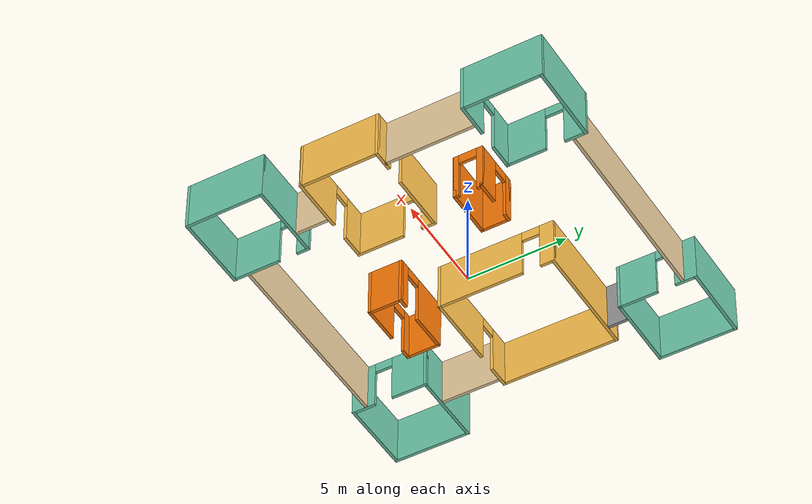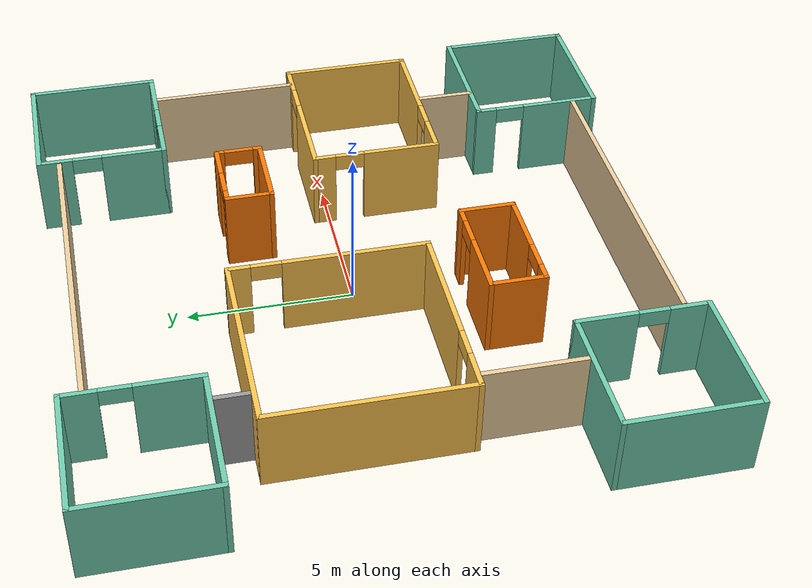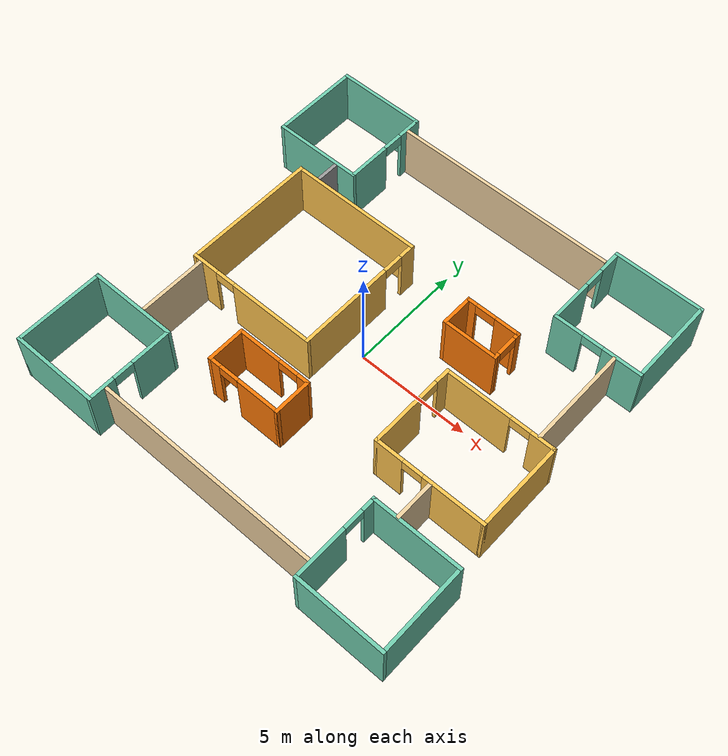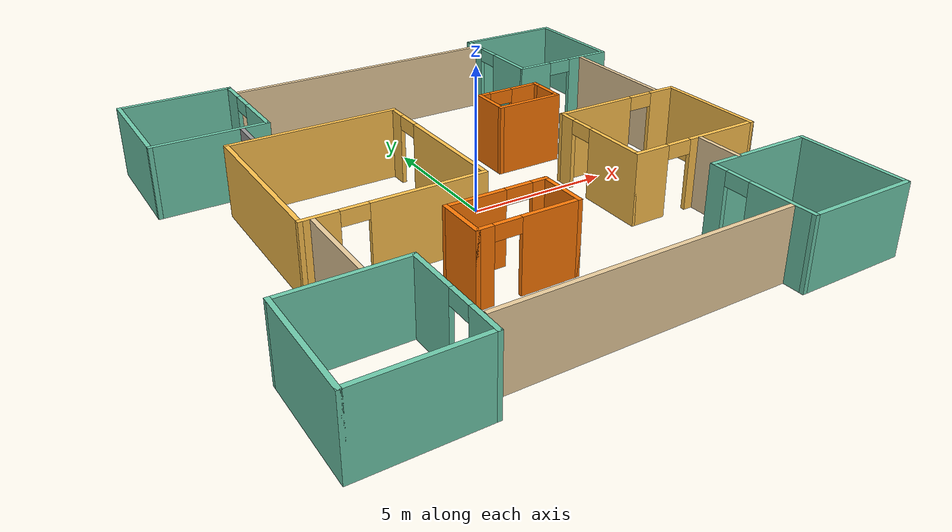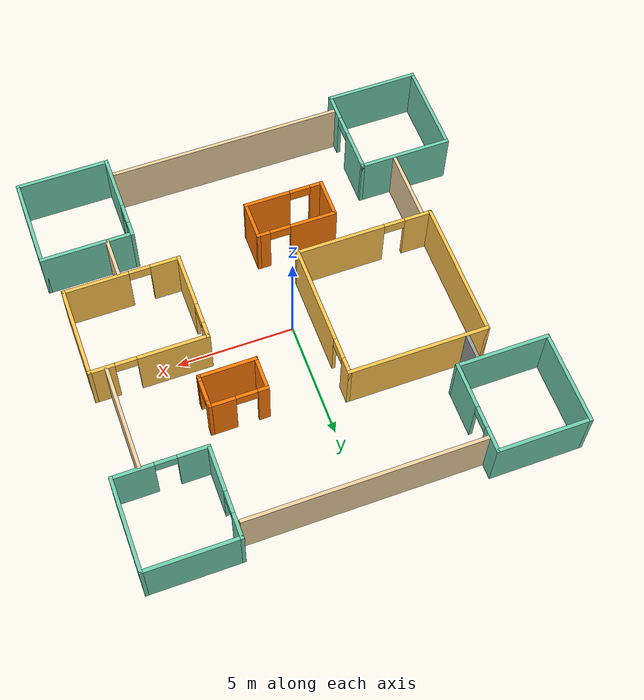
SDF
<?xml version='1.0'?>
<sdf version='1.6'>
  <model name='building'>
    <pose frame=''>0.06696 -0.111318 0 0 -0 0</pose>
    <link name='Wall_100'>
      <collision name='Wall_100_Collision'>
        <geometry>
          <box>
            <size>2.5 0.15 2.5</size>
          </box>
        </geometry>
        <pose frame=''>0 0 1.25 0 -0 0</pose>
      </collision>
      <visual name='Wall_100_Visual'>
        <pose frame=''>0 0 1.25 0 -0 0</pose>
        <geometry>
          <box>
            <size>2.5 0.15 2.5</size>
          </box>
        </geometry>
        <material>
          <script>
            <uri>file://media/materials/scripts/gazebo.material</uri>
            <name>Gazebo/Grey</name>
          </script>
          <ambient>0.996078 0.47451 0.0196078 1</ambient>
        </material>
        <meta>
          <layer>0</layer>
        </meta>
      </visual>
      <pose frame=''>3.37853 2.13615 0 0 -0 3.14159</pose>
    </link>
    <link name='Wall_101'>
      <collision name='Wall_101_Collision'>
        <geometry>
          <box>
            <size>1.5 0.15 2.5</size>
          </box>
        </geometry>
        <pose frame=''>0 0 1.25 0 -0 0</pose>
      </collision>
      <visual name='Wall_101_Visual'>
        <pose frame=''>0 0 1.25 0 -0 0</pose>
        <geometry>
          <box>
            <size>1.5 0.15 2.5</size>
          </box>
        </geometry>
        <material>
          <script>
            <uri>file://media/materials/scripts/gazebo.material</uri>
            <name>Gazebo/Grey</name>
          </script>
          <ambient>0.996078 0.47451 0.0196078 1</ambient>
        </material>
        <meta>
          <layer>0</layer>
        </meta>
      </visual>
      <pose frame=''>2.20353 2.81115 0 0 -0 1.5708</pose>
    </link>
    <link name='Wall_103'>
      <collision name='Wall_103_Collision'>
        <geometry>
          <box>
            <size>1.75 0.15 2.5</size>
          </box>
        </geometry>
        <pose frame=''>0 0 1.25 0 -0 0</pose>
      </collision>
      <visual name='Wall_103_Visual'>
        <pose frame=''>0 0 1.25 0 -0 0</pose>
        <geometry>
          <box>
            <size>1.75 0.15 2.5</size>
          </box>
        </geometry>
        <material>
          <script>
            <uri>file://media/materials/scripts/gazebo.material</uri>
            <name>Gazebo/Grey</name>
          </script>
          <ambient>0.996078 0.47451 0.0196078 1</ambient>
        </material>
        <meta>
          <layer>0</layer>
        </meta>
      </visual>
      <pose frame=''>-3.11094 -4.01873 0 0 0 -1.5708</pose>
    </link>
    <link name='Wall_104'>
      <pose frame=''>-1.43594 -4.81873 0 0 -0 0</pose>
      <visual name='Wall_104_Visual_0'>
        <pose frame=''>-1.45465 0 1.25 0 -0 0</pose>
        <geometry>
          <box>
            <size>0.590693 0.15 2.5</size>
          </box>
        </geometry>
        <material>
          <script>
            <uri>file://media/materials/scripts/gazebo.material</uri>
            <name>Gazebo/Grey</name>
          </script>
          <ambient>0.996078 0.47451 0.0196078 1</ambient>
        </material>
        <meta>
          <layer>0</layer>
        </meta>
      </visual>
      <collision name='Wall_104_Collision_0'>
        <geometry>
          <box>
            <size>0.590693 0.15 2.5</size>
          </box>
        </geometry>
        <pose frame=''>-1.45465 0 1.25 0 -0 0</pose>
      </collision>
      <visual name='Wall_104_Visual_1'>
        <pose frame=''>0.745346 0 1.25 0 -0 0</pose>
        <geometry>
          <box>
            <size>2.00931 0.15 2.5</size>
          </box>
        </geometry>
        <material>
          <script>
            <uri>file://media/materials/scripts/gazebo.material</uri>
            <name>Gazebo/Grey</name>
          </script>
          <ambient>0.996078 0.47451 0.0196078 1</ambient>
        </material>
        <meta>
          <layer>0</layer>
        </meta>
      </visual>
      <collision name='Wall_104_Collision_1'>
        <geometry>
          <box>
            <size>2.00931 0.15 2.5</size>
          </box>
        </geometry>
        <pose frame=''>0.745346 0 1.25 0 -0 0</pose>
      </collision>
      <visual name='Wall_104_Visual_2'>
        <pose frame=''>-0.709307 0 2.25 0 -0 0</pose>
        <geometry>
          <box>
            <size>0.9 0.15 0.5</size>
          </box>
        </geometry>
        <material>
          <script>
            <uri>file://media/materials/scripts/gazebo.material</uri>
            <name>Gazebo/Grey</name>
          </script>
          <ambient>0.996078 0.47451 0.0196078 1</ambient>
        </material>
        <meta>
          <layer>0</layer>
        </meta>
      </visual>
      <collision name='Wall_104_Collision_2'>
        <geometry>
          <box>
            <size>0.9 0.15 0.5</size>
          </box>
        </geometry>
        <pose frame=''>-0.709307 0 2.25 0 -0 0</pose>
      </collision>
    </link>
    <link name='Wall_105'>
      <collision name='Wall_105_Collision'>
        <geometry>
          <box>
            <size>1.75 0.15 2.5</size>
          </box>
        </geometry>
        <pose frame=''>0 0 1.25 0 -0 0</pose>
      </collision>
      <visual name='Wall_105_Visual'>
        <pose frame=''>0 0 1.25 0 -0 0</pose>
        <geometry>
          <box>
            <size>1.75 0.15 2.5</size>
          </box>
        </geometry>
        <material>
          <script>
            <uri>file://media/materials/scripts/gazebo.material</uri>
            <name>Gazebo/Grey</name>
          </script>
          <ambient>0.996078 0.47451 0.0196078 1</ambient>
        </material>
        <meta>
          <layer>0</layer>
        </meta>
      </visual>
      <pose frame=''>0.239057 -4.01873 0 0 -0 1.5708</pose>
    </link>
    <link name='Wall_106'>
      <pose frame=''>-1.43594 -3.21873 0 0 -0 3.14159</pose>
      <visual name='Wall_106_Visual_0'>
        <pose frame=''>-1.46139 0 1.25 0 -0 0</pose>
        <geometry>
          <box>
            <size>0.577222 0.15 2.5</size>
          </box>
        </geometry>
        <material>
          <script>
            <uri>file://media/materials/scripts/gazebo.material</uri>
            <name>Gazebo/Grey</name>
          </script>
          <ambient>0.996078 0.47451 0.0196078 1</ambient>
        </material>
        <meta>
          <layer>0</layer>
        </meta>
      </visual>
      <collision name='Wall_106_Collision_0'>
        <geometry>
          <box>
            <size>0.577222 0.15 2.5</size>
          </box>
        </geometry>
        <pose frame=''>-1.46139 0 1.25 0 -0 0</pose>
      </collision>
      <visual name='Wall_106_Visual_1'>
        <pose frame=''>0.738611 0 1.25 0 -0 0</pose>
        <geometry>
          <box>
            <size>2.02278 0.15 2.5</size>
          </box>
        </geometry>
        <material>
          <script>
            <uri>file://media/materials/scripts/gazebo.material</uri>
            <name>Gazebo/Grey</name>
          </script>
          <ambient>0.996078 0.47451 0.0196078 1</ambient>
        </material>
        <meta>
          <layer>0</layer>
        </meta>
      </visual>
      <collision name='Wall_106_Collision_1'>
        <geometry>
          <box>
            <size>2.02278 0.15 2.5</size>
          </box>
        </geometry>
        <pose frame=''>0.738611 0 1.25 0 -0 0</pose>
      </collision>
      <visual name='Wall_106_Visual_2'>
        <pose frame=''>-0.722778 0 2.25 0 -0 0</pose>
        <geometry>
          <box>
            <size>0.9 0.15 0.5</size>
          </box>
        </geometry>
        <material>
          <script>
            <uri>file://media/materials/scripts/gazebo.material</uri>
            <name>Gazebo/Grey</name>
          </script>
          <ambient>0.996078 0.47451 0.0196078 1</ambient>
        </material>
        <meta>
          <layer>0</layer>
        </meta>
      </visual>
      <collision name='Wall_106_Collision_2'>
        <geometry>
          <box>
            <size>0.9 0.15 0.5</size>
          </box>
        </geometry>
        <pose frame=''>-0.722778 0 2.25 0 -0 0</pose>
      </collision>
    </link>
    <link name='Wall_108'>
      <collision name='Wall_108_Collision'>
        <geometry>
          <box>
            <size>3 0.15 2.5</size>
          </box>
        </geometry>
        <pose frame=''>0 0 1.25 0 -0 0</pose>
      </collision>
      <visual name='Wall_108_Visual'>
        <pose frame=''>0 0 1.25 0 -0 0</pose>
        <geometry>
          <box>
            <size>3 0.15 2.5</size>
          </box>
        </geometry>
        <material>
          <script>
            <uri>file://media/materials/scripts/gazebo.material</uri>
            <name>Gazebo/Grey</name>
          </script>
          <ambient>0.921569 0.807843 0.615686 1</ambient>
        </material>
        <meta>
          <layer>0</layer>
        </meta>
      </visual>
      <pose frame=''>-6.50973 -3.48506 0 0 0 -1.5708</pose>
    </link>
    <link name='Wall_114'>
      <collision name='Wall_114_Collision'>
        <geometry>
          <box>
            <size>4.5 0.15 2.5</size>
          </box>
        </geometry>
        <pose frame=''>0 0 1.25 0 -0 0</pose>
      </collision>
      <visual name='Wall_114_Visual'>
        <pose frame=''>0 0 1.25 0 -0 0</pose>
        <geometry>
          <box>
            <size>4.5 0.15 2.5</size>
          </box>
        </geometry>
        <material>
          <script>
            <uri>file://media/materials/scripts/gazebo.material</uri>
            <name>Gazebo/Grey</name>
          </script>
          <ambient>0.921569 0.807843 0.615686 1</ambient>
        </material>
        <meta>
          <layer>0</layer>
        </meta>
      </visual>
      <pose frame=''>7.81153 2.79707 0 0 0 -1.5708</pose>
    </link>
    <link name='Wall_116'>
      <collision name='Wall_116_Collision'>
        <geometry>
          <box>
            <size>10 0.15 2.5</size>
          </box>
        </geometry>
        <pose frame=''>0 0 1.25 0 -0 0</pose>
      </collision>
      <visual name='Wall_116_Visual'>
        <pose frame=''>0 0 1.25 0 -0 0</pose>
        <geometry>
          <box>
            <size>10 0.15 2.5</size>
          </box>
        </geometry>
        <material>
          <script>
            <uri>file://media/materials/scripts/gazebo.material</uri>
            <name>Gazebo/Grey</name>
          </script>
          <ambient>0.921569 0.807843 0.615686 1</ambient>
        </material>
        <meta>
          <layer>0</layer>
        </meta>
      </visual>
      <pose frame=''>0.006519 -8.20878 0 0 -0 0</pose>
    </link>
    <link name='Wall_118'>
      <collision name='Wall_118_Collision'>
        <geometry>
          <box>
            <size>1.75 0.15 2.5</size>
          </box>
        </geometry>
        <pose frame=''>0 0 1.25 0 -0 0</pose>
      </collision>
      <visual name='Wall_118_Visual'>
        <pose frame=''>0 0 1.25 0 -0 0</pose>
        <geometry>
          <box>
            <size>1.75 0.15 2.5</size>
          </box>
        </geometry>
        <material>
          <script>
            <uri>file://media/materials/scripts/gazebo.material</uri>
            <name>Gazebo/Grey</name>
          </script>
          <ambient>0.921569 0.807843 0.615686 1</ambient>
        </material>
        <meta>
          <layer>0</layer>
        </meta>
      </visual>
      <pose frame=''>6.15848 -4.23502 0 0 0 -1.5708</pose>
    </link>
    <link name='Wall_121'>
      <collision name='Wall_121_Collision'>
        <geometry>
          <box>
            <size>1 0.15 2.5</size>
          </box>
        </geometry>
        <pose frame=''>0 0 1.25 0 -0 0</pose>
      </collision>
      <visual name='Wall_121_Visual'>
        <pose frame=''>0 0 1.25 0 -0 0</pose>
        <geometry>
          <box>
            <size>1 0.15 2.5</size>
          </box>
        </geometry>
        <material>
          <script>
            <uri>file://media/materials/scripts/gazebo.material</uri>
            <name>Gazebo/Grey</name>
          </script>
          <ambient>1 1 1 1</ambient>
        </material>
        <meta>
          <layer>0</layer>
        </meta>
      </visual>
      <pose frame=''>-5.96902 4.51336 0 0 0 -1.5708</pose>
    </link>
    <link name='Wall_124'>
      <collision name='Wall_124_Collision'>
        <geometry>
          <box>
            <size>10 0.15 2.5</size>
          </box>
        </geometry>
        <pose frame=''>0 0 1.25 0 -0 0</pose>
      </collision>
      <visual name='Wall_124_Visual'>
        <pose frame=''>0 0 1.25 0 -0 0</pose>
        <geometry>
          <box>
            <size>10 0.15 2.5</size>
          </box>
        </geometry>
        <material>
          <script>
            <uri>file://media/materials/scripts/gazebo.material</uri>
            <name>Gazebo/Grey</name>
          </script>
          <ambient>0.921569 0.807843 0.615686 1</ambient>
        </material>
        <meta>
          <layer>0</layer>
        </meta>
      </visual>
      <pose frame=''>-0.024379 8.30625 0 0 -0 0</pose>
    </link>
    <link name='Wall_58'>
      <collision name='Wall_58_Collision'>
        <geometry>
          <box>
            <size>4 0.15 2.5</size>
          </box>
        </geometry>
        <pose frame=''>0 0 1.25 0 -0 0</pose>
      </collision>
      <visual name='Wall_58_Visual'>
        <pose frame=''>0 0 1.25 0 -0 0</pose>
        <geometry>
          <box>
            <size>4 0.15 2.5</size>
          </box>
        </geometry>
        <material>
          <script>
            <uri>file://media/materials/scripts/gazebo.material</uri>
            <name>Gazebo/Grey</name>
          </script>
          <ambient>0.435294 0.796078 0.67451 1</ambient>
        </material>
        <meta>
          <layer>0</layer>
        </meta>
      </visual>
      <pose frame=''>-7.00929 8.93364 0 0 -0 0</pose>
    </link>
    <link name='Wall_59'>
      <pose frame=''>-5.08429 7.00864 0 0 0 -1.5708</pose>
      <visual name='Wall_59_Visual_0'>
        <pose frame=''>-1.4441 0 1.25 0 -0 0</pose>
        <geometry>
          <box>
            <size>1.11179 0.15 2.5</size>
          </box>
        </geometry>
        <material>
          <script>
            <uri>file://media/materials/scripts/gazebo.material</uri>
            <name>Gazebo/Grey</name>
          </script>
          <ambient>0.435294 0.796078 0.67451 1</ambient>
        </material>
        <meta>
          <layer>0</layer>
        </meta>
      </visual>
      <collision name='Wall_59_Collision_0'>
        <geometry>
          <box>
            <size>1.11179 0.15 2.5</size>
          </box>
        </geometry>
        <pose frame=''>-1.4441 0 1.25 0 -0 0</pose>
      </collision>
      <visual name='Wall_59_Visual_1'>
        <pose frame=''>1.0059 0 1.25 0 -0 0</pose>
        <geometry>
          <box>
            <size>1.98821 0.15 2.5</size>
          </box>
        </geometry>
        <material>
          <script>
            <uri>file://media/materials/scripts/gazebo.material</uri>
            <name>Gazebo/Grey</name>
          </script>
          <ambient>0.435294 0.796078 0.67451 1</ambient>
        </material>
        <meta>
          <layer>0</layer>
        </meta>
      </visual>
      <collision name='Wall_59_Collision_1'>
        <geometry>
          <box>
            <size>1.98821 0.15 2.5</size>
          </box>
        </geometry>
        <pose frame=''>1.0059 0 1.25 0 -0 0</pose>
      </collision>
      <visual name='Wall_59_Visual_2'>
        <pose frame=''>-0.438207 0 2.25 0 -0 0</pose>
        <geometry>
          <box>
            <size>0.9 0.15 0.5</size>
          </box>
        </geometry>
        <material>
          <script>
            <uri>file://media/materials/scripts/gazebo.material</uri>
            <name>Gazebo/Grey</name>
          </script>
          <ambient>0.435294 0.796078 0.67451 1</ambient>
        </material>
        <meta>
          <layer>0</layer>
        </meta>
      </visual>
      <collision name='Wall_59_Collision_2'>
        <geometry>
          <box>
            <size>0.9 0.15 0.5</size>
          </box>
        </geometry>
        <pose frame=''>-0.438207 0 2.25 0 -0 0</pose>
      </collision>
    </link>
    <link name='Wall_60'>
      <collision name='Wall_60_Collision'>
        <geometry>
          <box>
            <size>4 0.15 2.5</size>
          </box>
        </geometry>
        <pose frame=''>0 0 1.25 0 -0 0</pose>
      </collision>
      <visual name='Wall_60_Visual'>
        <pose frame=''>0 0 1.25 0 -0 0</pose>
        <geometry>
          <box>
            <size>4 0.15 2.5</size>
          </box>
        </geometry>
        <material>
          <script>
            <uri>file://media/materials/scripts/gazebo.material</uri>
            <name>Gazebo/Grey</name>
          </script>
          <ambient>0.435294 0.796078 0.67451 1</ambient>
        </material>
        <meta>
          <layer>0</layer>
        </meta>
      </visual>
      <pose frame=''>-7.00929 5.08364 0 0 -0 3.14159</pose>
    </link>
    <link name='Wall_61'>
      <collision name='Wall_61_Collision'>
        <geometry>
          <box>
            <size>4 0.15 2.5</size>
          </box>
        </geometry>
        <pose frame=''>0 0 1.25 0 -0 0</pose>
      </collision>
      <visual name='Wall_61_Visual'>
        <pose frame=''>0 0 1.25 0 -0 0</pose>
        <geometry>
          <box>
            <size>4 0.15 2.5</size>
          </box>
        </geometry>
        <material>
          <script>
            <uri>file://media/materials/scripts/gazebo.material</uri>
            <name>Gazebo/Grey</name>
          </script>
          <ambient>0.435294 0.796078 0.67451 1</ambient>
        </material>
        <meta>
          <layer>0</layer>
        </meta>
      </visual>
      <pose frame=''>-8.93429 7.00864 0 0 -0 1.5708</pose>
    </link>
    <link name='Wall_63'>
      <collision name='Wall_63_Collision'>
        <geometry>
          <box>
            <size>4 0.15 2.5</size>
          </box>
        </geometry>
        <pose frame=''>0 0 1.25 0 -0 0</pose>
      </collision>
      <visual name='Wall_63_Visual'>
        <pose frame=''>0 0 1.25 0 -0 0</pose>
        <geometry>
          <box>
            <size>4 0.15 2.5</size>
          </box>
        </geometry>
        <material>
          <script>
            <uri>file://media/materials/scripts/gazebo.material</uri>
            <name>Gazebo/Grey</name>
          </script>
          <ambient>0.435294 0.796078 0.67451 1</ambient>
        </material>
        <meta>
          <layer>0</layer>
        </meta>
      </visual>
      <pose frame=''>8.93429 6.99136 0 0 0 -1.5708</pose>
    </link>
    <link name='Wall_64'>
      <pose frame=''>7.00929 5.06635 0 0 -0 3.14159</pose>
      <visual name='Wall_64_Visual_0'>
        <pose frame=''>-1.11962 0 1.25 0 -0 0</pose>
        <geometry>
          <box>
            <size>1.76077 0.15 2.5</size>
          </box>
        </geometry>
        <material>
          <script>
            <uri>file://media/materials/scripts/gazebo.material</uri>
            <name>Gazebo/Grey</name>
          </script>
          <ambient>0.435294 0.796078 0.67451 1</ambient>
        </material>
        <meta>
          <layer>0</layer>
        </meta>
      </visual>
      <collision name='Wall_64_Collision_0'>
        <geometry>
          <box>
            <size>1.76077 0.15 2.5</size>
          </box>
        </geometry>
        <pose frame=''>-1.11962 0 1.25 0 -0 0</pose>
      </collision>
      <visual name='Wall_64_Visual_1'>
        <pose frame=''>1.33038 0 1.25 0 -0 0</pose>
        <geometry>
          <box>
            <size>1.33923 0.15 2.5</size>
          </box>
        </geometry>
        <material>
          <script>
            <uri>file://media/materials/scripts/gazebo.material</uri>
            <name>Gazebo/Grey</name>
          </script>
          <ambient>0.435294 0.796078 0.67451 1</ambient>
        </material>
        <meta>
          <layer>0</layer>
        </meta>
      </visual>
      <collision name='Wall_64_Collision_1'>
        <geometry>
          <box>
            <size>1.33923 0.15 2.5</size>
          </box>
        </geometry>
        <pose frame=''>1.33038 0 1.25 0 -0 0</pose>
      </collision>
      <visual name='Wall_64_Visual_2'>
        <pose frame=''>0.210767 0 2.25 0 -0 0</pose>
        <geometry>
          <box>
            <size>0.9 0.15 0.5</size>
          </box>
        </geometry>
        <material>
          <script>
            <uri>file://media/materials/scripts/gazebo.material</uri>
            <name>Gazebo/Grey</name>
          </script>
          <ambient>0.435294 0.796078 0.67451 1</ambient>
        </material>
        <meta>
          <layer>0</layer>
        </meta>
      </visual>
      <collision name='Wall_64_Collision_2'>
        <geometry>
          <box>
            <size>0.9 0.15 0.5</size>
          </box>
        </geometry>
        <pose frame=''>0.210767 0 2.25 0 -0 0</pose>
      </collision>
    </link>
    <link name='Wall_65'>
      <pose frame=''>5.08429 6.99136 0 0 -0 1.5708</pose>
      <visual name='Wall_65_Visual_0'>
        <pose frame=''>-0.997252 0 1.25 0 -0 0</pose>
        <geometry>
          <box>
            <size>2.0055 0.15 2.5</size>
          </box>
        </geometry>
        <material>
          <script>
            <uri>file://media/materials/scripts/gazebo.material</uri>
            <name>Gazebo/Grey</name>
          </script>
          <ambient>0.435294 0.796078 0.67451 1</ambient>
        </material>
        <meta>
          <layer>0</layer>
        </meta>
      </visual>
      <collision name='Wall_65_Collision_0'>
        <geometry>
          <box>
            <size>2.0055 0.15 2.5</size>
          </box>
        </geometry>
        <pose frame=''>-0.997252 0 1.25 0 -0 0</pose>
      </collision>
      <visual name='Wall_65_Visual_1'>
        <pose frame=''>1.45275 0 1.25 0 -0 0</pose>
        <geometry>
          <box>
            <size>1.0945 0.15 2.5</size>
          </box>
        </geometry>
        <material>
          <script>
            <uri>file://media/materials/scripts/gazebo.material</uri>
            <name>Gazebo/Grey</name>
          </script>
          <ambient>0.435294 0.796078 0.67451 1</ambient>
        </material>
        <meta>
          <layer>0</layer>
        </meta>
      </visual>
      <collision name='Wall_65_Collision_1'>
        <geometry>
          <box>
            <size>1.0945 0.15 2.5</size>
          </box>
        </geometry>
        <pose frame=''>1.45275 0 1.25 0 -0 0</pose>
      </collision>
      <visual name='Wall_65_Visual_2'>
        <pose frame=''>0.455496 0 2.25 0 -0 0</pose>
        <geometry>
          <box>
            <size>0.9 0.15 0.5</size>
          </box>
        </geometry>
        <material>
          <script>
            <uri>file://media/materials/scripts/gazebo.material</uri>
            <name>Gazebo/Grey</name>
          </script>
          <ambient>0.435294 0.796078 0.67451 1</ambient>
        </material>
        <meta>
          <layer>0</layer>
        </meta>
      </visual>
      <collision name='Wall_65_Collision_2'>
        <geometry>
          <box>
            <size>0.9 0.15 0.5</size>
          </box>
        </geometry>
        <pose frame=''>0.455496 0 2.25 0 -0 0</pose>
      </collision>
    </link>
    <link name='Wall_66'>
      <collision name='Wall_66_Collision'>
        <geometry>
          <box>
            <size>4 0.15 2.5</size>
          </box>
        </geometry>
        <pose frame=''>0 0 1.25 0 -0 0</pose>
      </collision>
      <visual name='Wall_66_Visual'>
        <pose frame=''>0 0 1.25 0 -0 0</pose>
        <geometry>
          <box>
            <size>4 0.15 2.5</size>
          </box>
        </geometry>
        <material>
          <script>
            <uri>file://media/materials/scripts/gazebo.material</uri>
            <name>Gazebo/Grey</name>
          </script>
          <ambient>0.435294 0.796078 0.67451 1</ambient>
        </material>
        <meta>
          <layer>0</layer>
        </meta>
      </visual>
      <pose frame=''>7.00929 8.91635 0 0 -0 0</pose>
    </link>
    <link name='Wall_71'>
      <collision name='Wall_71_Collision'>
        <geometry>
          <box>
            <size>4 0.15 2.5</size>
          </box>
        </geometry>
        <pose frame=''>0 0 1.25 0 -0 0</pose>
      </collision>
      <visual name='Wall_71_Visual'>
        <pose frame=''>0 0 1.25 0 -0 0</pose>
        <geometry>
          <box>
            <size>4 0.15 2.5</size>
          </box>
        </geometry>
        <material>
          <script>
            <uri>file://media/materials/scripts/gazebo.material</uri>
            <name>Gazebo/Grey</name>
          </script>
          <ambient>0.435294 0.796078 0.67451 1</ambient>
        </material>
        <meta>
          <layer>0</layer>
        </meta>
      </visual>
      <pose frame=''>7.00929 -8.93364 0 0 -0 3.14159</pose>
    </link>
    <link name='Wall_72'>
      <pose frame=''>5.08429 -7.00864 0 0 -0 1.5708</pose>
      <visual name='Wall_72_Visual_0'>
        <pose frame=''>-0.779391 0 1.25 0 -0 0</pose>
        <geometry>
          <box>
            <size>2.44122 0.15 2.5</size>
          </box>
        </geometry>
        <material>
          <script>
            <uri>file://media/materials/scripts/gazebo.material</uri>
            <name>Gazebo/Grey</name>
          </script>
          <ambient>0.435294 0.796078 0.67451 1</ambient>
        </material>
        <meta>
          <layer>0</layer>
        </meta>
      </visual>
      <collision name='Wall_72_Collision_0'>
        <geometry>
          <box>
            <size>2.44122 0.15 2.5</size>
          </box>
        </geometry>
        <pose frame=''>-0.779391 0 1.25 0 -0 0</pose>
      </collision>
      <visual name='Wall_72_Visual_1'>
        <pose frame=''>1.67061 0 1.25 0 -0 0</pose>
        <geometry>
          <box>
            <size>0.658782 0.15 2.5</size>
          </box>
        </geometry>
        <material>
          <script>
            <uri>file://media/materials/scripts/gazebo.material</uri>
            <name>Gazebo/Grey</name>
          </script>
          <ambient>0.435294 0.796078 0.67451 1</ambient>
        </material>
        <meta>
          <layer>0</layer>
        </meta>
      </visual>
      <collision name='Wall_72_Collision_1'>
        <geometry>
          <box>
            <size>0.658782 0.15 2.5</size>
          </box>
        </geometry>
        <pose frame=''>1.67061 0 1.25 0 -0 0</pose>
      </collision>
      <visual name='Wall_72_Visual_2'>
        <pose frame=''>0.891218 0 2.25 0 -0 0</pose>
        <geometry>
          <box>
            <size>0.9 0.15 0.5</size>
          </box>
        </geometry>
        <material>
          <script>
            <uri>file://media/materials/scripts/gazebo.material</uri>
            <name>Gazebo/Grey</name>
          </script>
          <ambient>0.435294 0.796078 0.67451 1</ambient>
        </material>
        <meta>
          <layer>0</layer>
        </meta>
      </visual>
      <collision name='Wall_72_Collision_2'>
        <geometry>
          <box>
            <size>0.9 0.15 0.5</size>
          </box>
        </geometry>
        <pose frame=''>0.891218 0 2.25 0 -0 0</pose>
      </collision>
    </link>
    <link name='Wall_73'>
      <collision name='Wall_73_Collision'>
        <geometry>
          <box>
            <size>4 0.15 2.5</size>
          </box>
        </geometry>
        <pose frame=''>0 0 1.25 0 -0 0</pose>
      </collision>
      <visual name='Wall_73_Visual'>
        <pose frame=''>0 0 1.25 0 -0 0</pose>
        <geometry>
          <box>
            <size>4 0.15 2.5</size>
          </box>
        </geometry>
        <material>
          <script>
            <uri>file://media/materials/scripts/gazebo.material</uri>
            <name>Gazebo/Grey</name>
          </script>
          <ambient>0.435294 0.796078 0.67451 1</ambient>
        </material>
        <meta>
          <layer>0</layer>
        </meta>
      </visual>
      <pose frame=''>7.00929 -5.08364 0 0 -0 0</pose>
    </link>
    <link name='Wall_74'>
      <collision name='Wall_74_Collision'>
        <geometry>
          <box>
            <size>4 0.15 2.5</size>
          </box>
        </geometry>
        <pose frame=''>0 0 1.25 0 -0 0</pose>
      </collision>
      <visual name='Wall_74_Visual'>
        <pose frame=''>0 0 1.25 0 -0 0</pose>
        <geometry>
          <box>
            <size>4 0.15 2.5</size>
          </box>
        </geometry>
        <material>
          <script>
            <uri>file://media/materials/scripts/gazebo.material</uri>
            <name>Gazebo/Grey</name>
          </script>
          <ambient>0.435294 0.796078 0.67451 1</ambient>
        </material>
        <meta>
          <layer>0</layer>
        </meta>
      </visual>
      <pose frame=''>8.93429 -7.00864 0 0 0 -1.5708</pose>
    </link>
    <link name='Wall_76'>
      <collision name='Wall_76_Collision'>
        <geometry>
          <box>
            <size>4 0.15 2.5</size>
          </box>
        </geometry>
        <pose frame=''>0 0 1.25 0 -0 0</pose>
      </collision>
      <visual name='Wall_76_Visual'>
        <pose frame=''>0 0 1.25 0 -0 0</pose>
        <geometry>
          <box>
            <size>4 0.15 2.5</size>
          </box>
        </geometry>
        <material>
          <script>
            <uri>file://media/materials/scripts/gazebo.material</uri>
            <name>Gazebo/Grey</name>
          </script>
          <ambient>0.435294 0.796078 0.67451 1</ambient>
        </material>
        <meta>
          <layer>0</layer>
        </meta>
      </visual>
      <pose frame=''>-7.00929 -8.91636 0 0 -0 0</pose>
    </link>
    <link name='Wall_77'>
      <pose frame=''>-5.08429 -6.99136 0 0 -0 1.5708</pose>
      <visual name='Wall_77_Visual_0'>
        <pose frame=''>-1.38249 0 1.25 0 -0 0</pose>
        <geometry>
          <box>
            <size>1.23503 0.15 2.5</size>
          </box>
        </geometry>
        <material>
          <script>
            <uri>file://media/materials/scripts/gazebo.material</uri>
            <name>Gazebo/Grey</name>
          </script>
          <ambient>0.435294 0.796078 0.67451 1</ambient>
        </material>
        <meta>
          <layer>0</layer>
        </meta>
      </visual>
      <collision name='Wall_77_Collision_0'>
        <geometry>
          <box>
            <size>1.23503 0.15 2.5</size>
          </box>
        </geometry>
        <pose frame=''>-1.38249 0 1.25 0 -0 0</pose>
      </collision>
      <visual name='Wall_77_Visual_1'>
        <pose frame=''>1.06751 0 1.25 0 -0 0</pose>
        <geometry>
          <box>
            <size>1.86497 0.15 2.5</size>
          </box>
        </geometry>
        <material>
          <script>
            <uri>file://media/materials/scripts/gazebo.material</uri>
            <name>Gazebo/Grey</name>
          </script>
          <ambient>0.435294 0.796078 0.67451 1</ambient>
        </material>
        <meta>
          <layer>0</layer>
        </meta>
      </visual>
      <collision name='Wall_77_Collision_1'>
        <geometry>
          <box>
            <size>1.86497 0.15 2.5</size>
          </box>
        </geometry>
        <pose frame=''>1.06751 0 1.25 0 -0 0</pose>
      </collision>
      <visual name='Wall_77_Visual_2'>
        <pose frame=''>-0.314972 0 2.25 0 -0 0</pose>
        <geometry>
          <box>
            <size>0.9 0.15 0.5</size>
          </box>
        </geometry>
        <material>
          <script>
            <uri>file://media/materials/scripts/gazebo.material</uri>
            <name>Gazebo/Grey</name>
          </script>
          <ambient>0.435294 0.796078 0.67451 1</ambient>
        </material>
        <meta>
          <layer>0</layer>
        </meta>
      </visual>
      <collision name='Wall_77_Collision_2'>
        <geometry>
          <box>
            <size>0.9 0.15 0.5</size>
          </box>
        </geometry>
        <pose frame=''>-0.314972 0 2.25 0 -0 0</pose>
      </collision>
    </link>
    <link name='Wall_78'>
      <collision name='Wall_78_Collision'>
        <geometry>
          <box>
            <size>4 0.15 2.5</size>
          </box>
        </geometry>
        <pose frame=''>0 0 1.25 0 -0 0</pose>
      </collision>
      <visual name='Wall_78_Visual'>
        <pose frame=''>0 0 1.25 0 -0 0</pose>
        <geometry>
          <box>
            <size>4 0.15 2.5</size>
          </box>
        </geometry>
        <material>
          <script>
            <uri>file://media/materials/scripts/gazebo.material</uri>
            <name>Gazebo/Grey</name>
          </script>
          <ambient>0.435294 0.796078 0.67451 1</ambient>
        </material>
        <meta>
          <layer>0</layer>
        </meta>
      </visual>
      <pose frame=''>-7.00929 -5.06636 0 0 -0 3.14159</pose>
    </link>
    <link name='Wall_79'>
      <collision name='Wall_79_Collision'>
        <geometry>
          <box>
            <size>4 0.15 2.5</size>
          </box>
        </geometry>
        <pose frame=''>0 0 1.25 0 -0 0</pose>
      </collision>
      <visual name='Wall_79_Visual'>
        <pose frame=''>0 0 1.25 0 -0 0</pose>
        <geometry>
          <box>
            <size>4 0.15 2.5</size>
          </box>
        </geometry>
        <material>
          <script>
            <uri>file://media/materials/scripts/gazebo.material</uri>
            <name>Gazebo/Grey</name>
          </script>
          <ambient>0.435294 0.796078 0.67451 1</ambient>
        </material>
        <meta>
          <layer>0</layer>
        </meta>
      </visual>
      <pose frame=''>-8.93429 -6.99136 0 0 0 -1.5708</pose>
    </link>
    <link name='Wall_84'>
      <collision name='Wall_84_Collision'>
        <geometry>
          <box>
            <size>6 0.15 2.5</size>
          </box>
        </geometry>
        <pose frame=''>0 0 1.25 0 -0 0</pose>
      </collision>
      <visual name='Wall_84_Visual'>
        <pose frame=''>0 0 1.25 0 -0 0</pose>
        <geometry>
          <box>
            <size>6 0.15 2.5</size>
          </box>
        </geometry>
        <material>
          <script>
            <uri>file://media/materials/scripts/gazebo.material</uri>
            <name>Gazebo/Grey</name>
          </script>
          <ambient>1 0.764706 0.305882 1</ambient>
        </material>
        <meta>
          <layer>0</layer>
        </meta>
      </visual>
      <pose frame=''>-3.94006 3.93417 0 0 -0 0</pose>
    </link>
    <link name='Wall_85'>
      <pose frame=''>-1.01506 1.00917 0 0 0 -1.5708</pose>
      <visual name='Wall_85_Visual_0'>
        <pose frame=''>-2.63359 0 1.25 0 -0 0</pose>
        <geometry>
          <box>
            <size>0.732823 0.15 2.5</size>
          </box>
        </geometry>
        <material>
          <script>
            <uri>file://media/materials/scripts/gazebo.material</uri>
            <name>Gazebo/Grey</name>
          </script>
          <ambient>1 0.764706 0.305882 1</ambient>
        </material>
        <meta>
          <layer>0</layer>
        </meta>
      </visual>
      <collision name='Wall_85_Collision_0'>
        <geometry>
          <box>
            <size>0.732823 0.15 2.5</size>
          </box>
        </geometry>
        <pose frame=''>-2.63359 0 1.25 0 -0 0</pose>
      </collision>
      <visual name='Wall_85_Visual_1'>
        <pose frame=''>0.816412 0 1.25 0 -0 0</pose>
        <geometry>
          <box>
            <size>4.36718 0.15 2.5</size>
          </box>
        </geometry>
        <material>
          <script>
            <uri>file://media/materials/scripts/gazebo.material</uri>
            <name>Gazebo/Grey</name>
          </script>
          <ambient>1 0.764706 0.305882 1</ambient>
        </material>
        <meta>
          <layer>0</layer>
        </meta>
      </visual>
      <collision name='Wall_85_Collision_1'>
        <geometry>
          <box>
            <size>4.36718 0.15 2.5</size>
          </box>
        </geometry>
        <pose frame=''>0.816412 0 1.25 0 -0 0</pose>
      </collision>
      <visual name='Wall_85_Visual_2'>
        <pose frame=''>-1.81718 0 2.25 0 -0 0</pose>
        <geometry>
          <box>
            <size>0.9 0.15 0.5</size>
          </box>
        </geometry>
        <material>
          <script>
            <uri>file://media/materials/scripts/gazebo.material</uri>
            <name>Gazebo/Grey</name>
          </script>
          <ambient>1 0.764706 0.305882 1</ambient>
        </material>
        <meta>
          <layer>0</layer>
        </meta>
      </visual>
      <collision name='Wall_85_Collision_2'>
        <geometry>
          <box>
            <size>0.9 0.15 0.5</size>
          </box>
        </geometry>
        <pose frame=''>-1.81718 0 2.25 0 -0 0</pose>
      </collision>
    </link>
    <link name='Wall_86'>
      <pose frame=''>-3.94006 -1.91583 0 0 -0 3.14159</pose>
      <visual name='Wall_86_Visual_0'>
        <pose frame=''>-1.06873 0 1.25 0 -0 0</pose>
        <geometry>
          <box>
            <size>3.86254 0.15 2.5</size>
          </box>
        </geometry>
        <material>
          <script>
            <uri>file://media/materials/scripts/gazebo.material</uri>
            <name>Gazebo/Grey</name>
          </script>
          <ambient>1 0.764706 0.305882 1</ambient>
        </material>
        <meta>
          <layer>0</layer>
        </meta>
      </visual>
      <collision name='Wall_86_Collision_0'>
        <geometry>
          <box>
            <size>3.86254 0.15 2.5</size>
          </box>
        </geometry>
        <pose frame=''>-1.06873 0 1.25 0 -0 0</pose>
      </collision>
      <visual name='Wall_86_Visual_1'>
        <pose frame=''>2.38127 0 1.25 0 -0 0</pose>
        <geometry>
          <box>
            <size>1.23746 0.15 2.5</size>
          </box>
        </geometry>
        <material>
          <script>
            <uri>file://media/materials/scripts/gazebo.material</uri>
            <name>Gazebo/Grey</name>
          </script>
          <ambient>1 0.764706 0.305882 1</ambient>
        </material>
        <meta>
          <layer>0</layer>
        </meta>
      </visual>
      <collision name='Wall_86_Collision_1'>
        <geometry>
          <box>
            <size>1.23746 0.15 2.5</size>
          </box>
        </geometry>
        <pose frame=''>2.38127 0 1.25 0 -0 0</pose>
      </collision>
      <visual name='Wall_86_Visual_2'>
        <pose frame=''>1.31254 0 2.25 0 -0 0</pose>
        <geometry>
          <box>
            <size>0.9 0.15 0.5</size>
          </box>
        </geometry>
        <material>
          <script>
            <uri>file://media/materials/scripts/gazebo.material</uri>
            <name>Gazebo/Grey</name>
          </script>
          <ambient>1 0.764706 0.305882 1</ambient>
        </material>
        <meta>
          <layer>0</layer>
        </meta>
      </visual>
      <collision name='Wall_86_Collision_2'>
        <geometry>
          <box>
            <size>0.9 0.15 0.5</size>
          </box>
        </geometry>
        <pose frame=''>1.31254 0 2.25 0 -0 0</pose>
      </collision>
    </link>
    <link name='Wall_87'>
      <collision name='Wall_87_Collision'>
        <geometry>
          <box>
            <size>6 0.15 2.5</size>
          </box>
        </geometry>
        <pose frame=''>0 0 1.25 0 -0 0</pose>
      </collision>
      <visual name='Wall_87_Visual'>
        <pose frame=''>0 0 1.25 0 -0 0</pose>
        <geometry>
          <box>
            <size>6 0.15 2.5</size>
          </box>
        </geometry>
        <material>
          <script>
            <uri>file://media/materials/scripts/gazebo.material</uri>
            <name>Gazebo/Grey</name>
          </script>
          <ambient>1 0.764706 0.305882 1</ambient>
        </material>
        <meta>
          <layer>0</layer>
        </meta>
      </visual>
      <pose frame=''>-6.86506 1.00917 0 0 -0 1.5708</pose>
    </link>
    <link name='Wall_89'>
      <collision name='Wall_89_Collision'>
        <geometry>
          <box>
            <size>4 0.15 2.5</size>
          </box>
        </geometry>
        <pose frame=''>0 0 1.25 0 -0 0</pose>
      </collision>
      <visual name='Wall_89_Visual'>
        <pose frame=''>0 0 1.25 0 -0 0</pose>
        <geometry>
          <box>
            <size>4 0.15 2.5</size>
          </box>
        </geometry>
        <material>
          <script>
            <uri>file://media/materials/scripts/gazebo.material</uri>
            <name>Gazebo/Grey</name>
          </script>
          <ambient>1 0.764706 0.305882 1</ambient>
        </material>
        <meta>
          <layer>0</layer>
        </meta>
      </visual>
      <pose frame=''>8.49129 -1.38643 0 0 -0 1.5708</pose>
    </link>
    <link name='Wall_90'>
      <pose frame=''>6.06629 0.538572 0 0 -0 3.14159</pose>
      <visual name='Wall_90_Visual_0'>
        <pose frame=''>-1.9492 0 1.25 0 -0 0</pose>
        <geometry>
          <box>
            <size>1.1016 0.15 2.5</size>
          </box>
        </geometry>
        <material>
          <script>
            <uri>file://media/materials/scripts/gazebo.material</uri>
            <name>Gazebo/Grey</name>
          </script>
          <ambient>1 0.764706 0.305882 1</ambient>
        </material>
        <meta>
          <layer>0</layer>
        </meta>
      </visual>
      <collision name='Wall_90_Collision_0'>
        <geometry>
          <box>
            <size>1.1016 0.15 2.5</size>
          </box>
        </geometry>
        <pose frame=''>-1.9492 0 1.25 0 -0 0</pose>
      </collision>
      <visual name='Wall_90_Visual_1'>
        <pose frame=''>1.0008 0 1.25 0 -0 0</pose>
        <geometry>
          <box>
            <size>2.9984 0.15 2.5</size>
          </box>
        </geometry>
        <material>
          <script>
            <uri>file://media/materials/scripts/gazebo.material</uri>
            <name>Gazebo/Grey</name>
          </script>
          <ambient>1 0.764706 0.305882 1</ambient>
        </material>
        <meta>
          <layer>0</layer>
        </meta>
      </visual>
      <collision name='Wall_90_Collision_1'>
        <geometry>
          <box>
            <size>2.9984 0.15 2.5</size>
          </box>
        </geometry>
        <pose frame=''>1.0008 0 1.25 0 -0 0</pose>
      </collision>
      <visual name='Wall_90_Visual_2'>
        <pose frame=''>-0.948401 0 2.25 0 -0 0</pose>
        <geometry>
          <box>
            <size>0.9 0.15 0.5</size>
          </box>
        </geometry>
        <material>
          <script>
            <uri>file://media/materials/scripts/gazebo.material</uri>
            <name>Gazebo/Grey</name>
          </script>
          <ambient>1 0.764706 0.305882 1</ambient>
        </material>
        <meta>
          <layer>0</layer>
        </meta>
      </visual>
      <collision name='Wall_90_Collision_2'>
        <geometry>
          <box>
            <size>0.9 0.15 0.5</size>
          </box>
        </geometry>
        <pose frame=''>-0.948401 0 2.25 0 -0 0</pose>
      </collision>
    </link>
    <link name='Wall_91'>
      <pose frame=''>3.64129 -1.38643 0 0 0 -1.5708</pose>
      <visual name='Wall_91_Visual_0'>
        <pose frame=''>-1.64261 0 1.25 0 -0 0</pose>
        <geometry>
          <box>
            <size>0.714781 0.15 2.5</size>
          </box>
        </geometry>
        <material>
          <script>
            <uri>file://media/materials/scripts/gazebo.material</uri>
            <name>Gazebo/Grey</name>
          </script>
          <ambient>1 0.764706 0.305882 1</ambient>
        </material>
        <meta>
          <layer>0</layer>
        </meta>
      </visual>
      <collision name='Wall_91_Collision_0'>
        <geometry>
          <box>
            <size>0.714781 0.15 2.5</size>
          </box>
        </geometry>
        <pose frame=''>-1.64261 0 1.25 0 -0 0</pose>
      </collision>
      <visual name='Wall_91_Visual_1'>
        <pose frame=''>0.80739 0 1.25 0 -0 0</pose>
        <geometry>
          <box>
            <size>2.38522 0.15 2.5</size>
          </box>
        </geometry>
        <material>
          <script>
            <uri>file://media/materials/scripts/gazebo.material</uri>
            <name>Gazebo/Grey</name>
          </script>
          <ambient>1 0.764706 0.305882 1</ambient>
        </material>
        <meta>
          <layer>0</layer>
        </meta>
      </visual>
      <collision name='Wall_91_Collision_1'>
        <geometry>
          <box>
            <size>2.38522 0.15 2.5</size>
          </box>
        </geometry>
        <pose frame=''>0.80739 0 1.25 0 -0 0</pose>
      </collision>
      <visual name='Wall_91_Visual_2'>
        <pose frame=''>-0.835219 0 2.25 0 -0 0</pose>
        <geometry>
          <box>
            <size>0.9 0.15 0.5</size>
          </box>
        </geometry>
        <material>
          <script>
            <uri>file://media/materials/scripts/gazebo.material</uri>
            <name>Gazebo/Grey</name>
          </script>
          <ambient>1 0.764706 0.305882 1</ambient>
        </material>
        <meta>
          <layer>0</layer>
        </meta>
      </visual>
      <collision name='Wall_91_Collision_2'>
        <geometry>
          <box>
            <size>0.9 0.15 0.5</size>
          </box>
        </geometry>
        <pose frame=''>-0.835219 0 2.25 0 -0 0</pose>
      </collision>
    </link>
    <link name='Wall_92'>
      <pose frame=''>6.06629 -3.31143 0 0 -0 0</pose>
      <visual name='Wall_92_Visual_0'>
        <pose frame=''>-1.85194 0 1.25 0 -0 0</pose>
        <geometry>
          <box>
            <size>1.29611 0.15 2.5</size>
          </box>
        </geometry>
        <material>
          <script>
            <uri>file://media/materials/scripts/gazebo.material</uri>
            <name>Gazebo/Grey</name>
          </script>
          <ambient>1 0.764706 0.305882 1</ambient>
        </material>
        <meta>
          <layer>0</layer>
        </meta>
      </visual>
      <collision name='Wall_92_Collision_0'>
        <geometry>
          <box>
            <size>1.29611 0.15 2.5</size>
          </box>
        </geometry>
        <pose frame=''>-1.85194 0 1.25 0 -0 0</pose>
      </collision>
      <visual name='Wall_92_Visual_1'>
        <pose frame=''>1.09806 0 1.25 0 -0 0</pose>
        <geometry>
          <box>
            <size>2.80389 0.15 2.5</size>
          </box>
        </geometry>
        <material>
          <script>
            <uri>file://media/materials/scripts/gazebo.material</uri>
            <name>Gazebo/Grey</name>
          </script>
          <ambient>1 0.764706 0.305882 1</ambient>
        </material>
        <meta>
          <layer>0</layer>
        </meta>
      </visual>
      <collision name='Wall_92_Collision_1'>
        <geometry>
          <box>
            <size>2.80389 0.15 2.5</size>
          </box>
        </geometry>
        <pose frame=''>1.09806 0 1.25 0 -0 0</pose>
      </collision>
      <visual name='Wall_92_Visual_2'>
        <pose frame=''>-0.753889 0 2.25 0 -0 0</pose>
        <geometry>
          <box>
            <size>0.9 0.15 0.5</size>
          </box>
        </geometry>
        <material>
          <script>
            <uri>file://media/materials/scripts/gazebo.material</uri>
            <name>Gazebo/Grey</name>
          </script>
          <ambient>1 0.764706 0.305882 1</ambient>
        </material>
        <meta>
          <layer>0</layer>
        </meta>
      </visual>
      <collision name='Wall_92_Collision_2'>
        <geometry>
          <box>
            <size>0.9 0.15 0.5</size>
          </box>
        </geometry>
        <pose frame=''>-0.753889 0 2.25 0 -0 0</pose>
      </collision>
    </link>
    <link name='Wall_98'>
      <pose frame=''>3.37853 3.48615 0 0 -0 0</pose>
      <visual name='Wall_98_Visual_0'>
        <pose frame=''>-1.01792 0 1.25 0 -0 0</pose>
        <geometry>
          <box>
            <size>0.464152 0.15 2.5</size>
          </box>
        </geometry>
        <material>
          <script>
            <uri>file://media/materials/scripts/gazebo.material</uri>
            <name>Gazebo/Grey</name>
          </script>
          <ambient>0.996078 0.47451 0.0196078 1</ambient>
        </material>
        <meta>
          <layer>0</layer>
        </meta>
      </visual>
      <collision name='Wall_98_Collision_0'>
        <geometry>
          <box>
            <size>0.464152 0.15 2.5</size>
          </box>
        </geometry>
        <pose frame=''>-1.01792 0 1.25 0 -0 0</pose>
      </collision>
      <visual name='Wall_98_Visual_1'>
        <pose frame=''>0.682076 0 1.25 0 -0 0</pose>
        <geometry>
          <box>
            <size>1.13585 0.15 2.5</size>
          </box>
        </geometry>
        <material>
          <script>
            <uri>file://media/materials/scripts/gazebo.material</uri>
            <name>Gazebo/Grey</name>
          </script>
          <ambient>0.996078 0.47451 0.0196078 1</ambient>
        </material>
        <meta>
          <layer>0</layer>
        </meta>
      </visual>
      <collision name='Wall_98_Collision_1'>
        <geometry>
          <box>
            <size>1.13585 0.15 2.5</size>
          </box>
        </geometry>
        <pose frame=''>0.682076 0 1.25 0 -0 0</pose>
      </collision>
      <visual name='Wall_98_Visual_2'>
        <pose frame=''>-0.335848 0 2.25 0 -0 0</pose>
        <geometry>
          <box>
            <size>0.9 0.15 0.5</size>
          </box>
        </geometry>
        <material>
          <script>
            <uri>file://media/materials/scripts/gazebo.material</uri>
            <name>Gazebo/Grey</name>
          </script>
          <ambient>0.996078 0.47451 0.0196078 1</ambient>
        </material>
        <meta>
          <layer>0</layer>
        </meta>
      </visual>
      <collision name='Wall_98_Collision_2'>
        <geometry>
          <box>
            <size>0.9 0.15 0.5</size>
          </box>
        </geometry>
        <pose frame=''>-0.335848 0 2.25 0 -0 0</pose>
      </collision>
    </link>
    <link name='Wall_99'>
      <pose frame=''>4.55353 2.81115 0 0 0 -1.5708</pose>
      <visual name='Wall_99_Visual_0'>
        <pose frame=''>-0.594089 0 1.25 0 -0 0</pose>
        <geometry>
          <box>
            <size>0.311822 0.15 2.5</size>
          </box>
        </geometry>
        <material>
          <script>
            <uri>file://media/materials/scripts/gazebo.material</uri>
            <name>Gazebo/Grey</name>
          </script>
          <ambient>0.996078 0.47451 0.0196078 1</ambient>
        </material>
        <meta>
          <layer>0</layer>
        </meta>
      </visual>
      <collision name='Wall_99_Collision_0'>
        <geometry>
          <box>
            <size>0.311822 0.15 2.5</size>
          </box>
        </geometry>
        <pose frame=''>-0.594089 0 1.25 0 -0 0</pose>
      </collision>
      <visual name='Wall_99_Visual_1'>
        <pose frame=''>0.605911 0 1.25 0 -0 0</pose>
        <geometry>
          <box>
            <size>0.288178 0.15 2.5</size>
          </box>
        </geometry>
        <material>
          <script>
            <uri>file://media/materials/scripts/gazebo.material</uri>
            <name>Gazebo/Grey</name>
          </script>
          <ambient>0.996078 0.47451 0.0196078 1</ambient>
        </material>
        <meta>
          <layer>0</layer>
        </meta>
      </visual>
      <collision name='Wall_99_Collision_1'>
        <geometry>
          <box>
            <size>0.288178 0.15 2.5</size>
          </box>
        </geometry>
        <pose frame=''>0.605911 0 1.25 0 -0 0</pose>
      </collision>
      <visual name='Wall_99_Visual_2'>
        <pose frame=''>0.011822 0 2.25 0 -0 0</pose>
        <geometry>
          <box>
            <size>0.9 0.15 0.5</size>
          </box>
        </geometry>
        <material>
          <script>
            <uri>file://media/materials/scripts/gazebo.material</uri>
            <name>Gazebo/Grey</name>
          </script>
          <ambient>0.996078 0.47451 0.0196078 1</ambient>
        </material>
        <meta>
          <layer>0</layer>
        </meta>
      </visual>
      <collision name='Wall_99_Collision_2'>
        <geometry>
          <box>
            <size>0.9 0.15 0.5</size>
          </box>
        </geometry>
        <pose frame=''>0.011822 0 2.25 0 -0 0</pose>
      </collision>
    </link>
    <static>1</static>
  </model>
</sdf>
